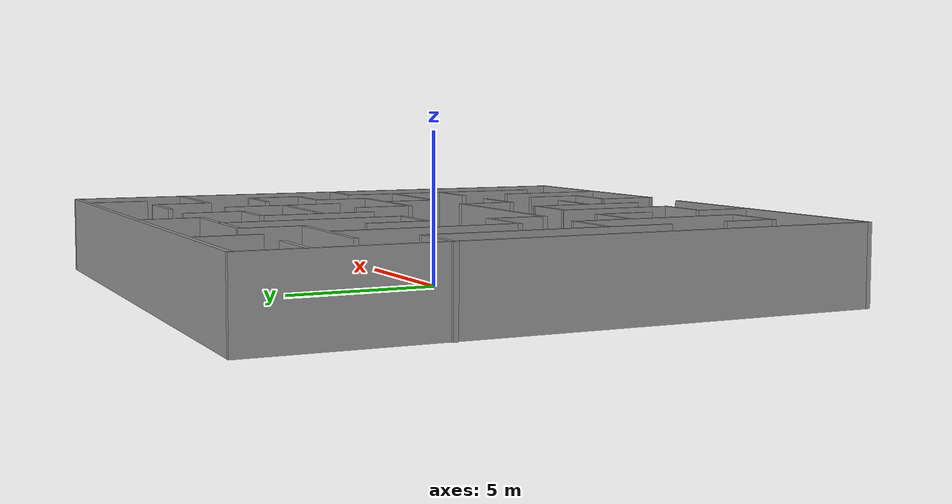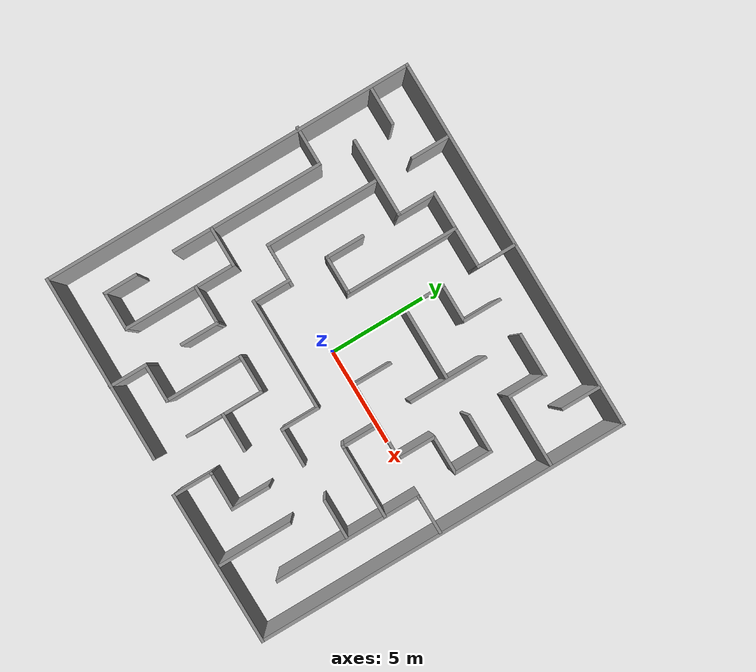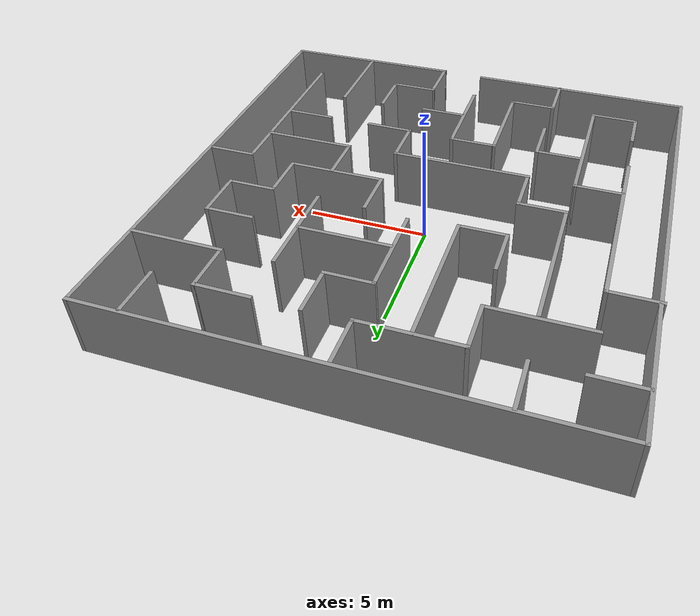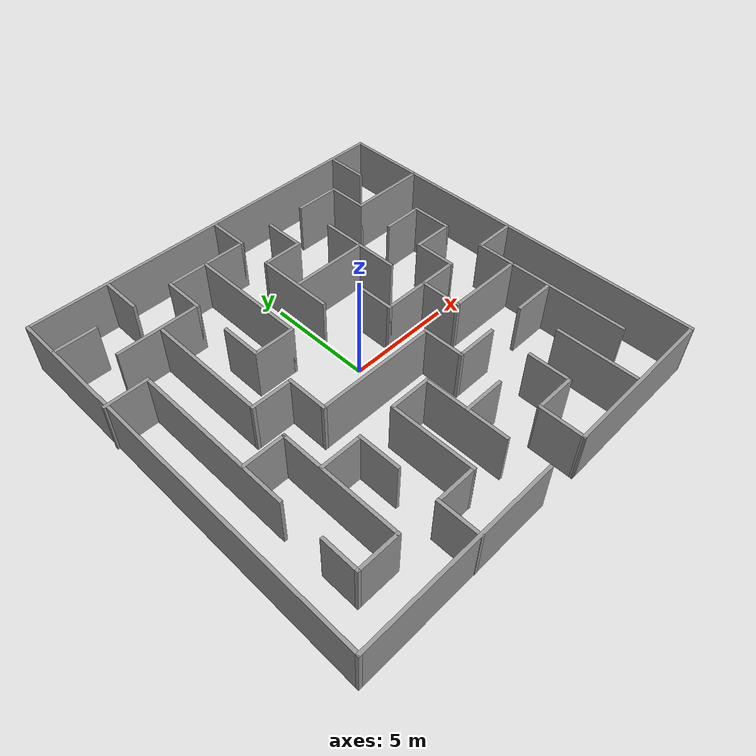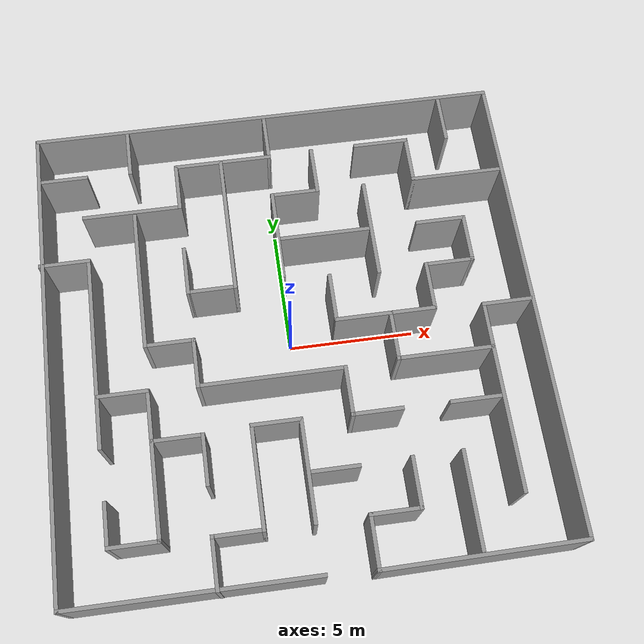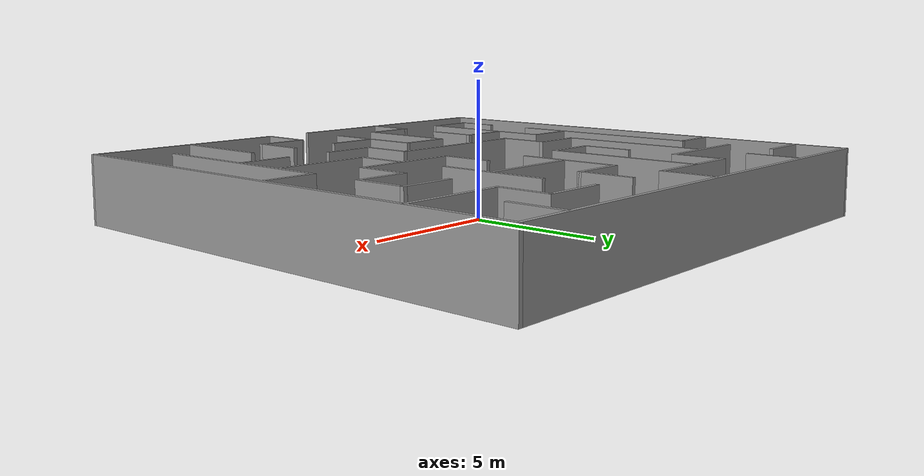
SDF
<?xml version='1.0'?>
<sdf version='1.7'>
  <model name='maze_4'>
    <pose>0.028402 0.032773 0 0 -0 0</pose>
    <link name='Wall_100'>
      <collision name='Wall_100_Collision'>
        <geometry>
          <box>
            <size>2 0.15 2.5</size>
          </box>
        </geometry>
        <pose>0 0 1.25 0 -0 0</pose>
      </collision>
      <visual name='Wall_100_Visual'>
        <pose>0 0 1.25 0 -0 0</pose>
        <geometry>
          <box>
            <size>2 0.15 2.5</size>
          </box>
        </geometry>
        <material>
          <script>
            <uri>file://media/materials/scripts/gazebo.material</uri>
            <name>Gazebo/Grey</name>
          </script>
          <ambient>1 1 1 1</ambient>
        </material>
        <meta>
          <layer>0</layer>
        </meta>
      </visual>
      <pose>5.79272 6.66078 0 0 -0 -1.5708</pose>
    </link>
    <link name='Wall_101'>
      <collision name='Wall_101_Collision'>
        <geometry>
          <box>
            <size>3.75 0.15 2.5</size>
          </box>
        </geometry>
        <pose>0 0 1.25 0 -0 0</pose>
      </collision>
      <visual name='Wall_101_Visual'>
        <pose>0 0 1.25 0 -0 0</pose>
        <geometry>
          <box>
            <size>3.75 0.15 2.5</size>
          </box>
        </geometry>
        <material>
          <script>
            <uri>file://media/materials/scripts/gazebo.material</uri>
            <name>Gazebo/Grey</name>
          </script>
          <ambient>1 1 1 1</ambient>
        </material>
        <meta>
          <layer>0</layer>
        </meta>
      </visual>
      <pose>7.59272 5.73578 0 0 -0 0</pose>
    </link>
    <link name='Wall_103'>
      <collision name='Wall_103_Collision'>
        <geometry>
          <box>
            <size>2 0.15 2.5</size>
          </box>
        </geometry>
        <pose>0 0 1.25 0 -0 0</pose>
      </collision>
      <visual name='Wall_103_Visual'>
        <pose>0 0 1.25 0 -0 0</pose>
        <geometry>
          <box>
            <size>2 0.15 2.5</size>
          </box>
        </geometry>
        <material>
          <script>
            <uri>file://media/materials/scripts/gazebo.material</uri>
            <name>Gazebo/Grey</name>
          </script>
          <ambient>1 1 1 1</ambient>
        </material>
        <meta>
          <layer>0</layer>
        </meta>
      </visual>
      <pose>7.4939 8.44082 0 0 -0 1.5708</pose>
    </link>
    <link name='Wall_105'>
      <collision name='Wall_105_Collision'>
        <geometry>
          <box>
            <size>2 0.15 2.5</size>
          </box>
        </geometry>
        <pose>0 0 1.25 0 -0 0</pose>
      </collision>
      <visual name='Wall_105_Visual'>
        <pose>0 0 1.25 0 -0 0</pose>
        <geometry>
          <box>
            <size>2 0.15 2.5</size>
          </box>
        </geometry>
        <material>
          <script>
            <uri>file://media/materials/scripts/gazebo.material</uri>
            <name>Gazebo/Grey</name>
          </script>
          <ambient>1 1 1 1</ambient>
        </material>
        <meta>
          <layer>0</layer>
        </meta>
      </visual>
      <pose>6.48172 -3.78372 0 0 -0 0</pose>
    </link>
    <link name='Wall_107'>
      <collision name='Wall_107_Collision'>
        <geometry>
          <box>
            <size>2 0.15 2.5</size>
          </box>
        </geometry>
        <pose>0 0 1.25 0 -0 0</pose>
      </collision>
      <visual name='Wall_107_Visual'>
        <pose>0 0 1.25 0 -0 0</pose>
        <geometry>
          <box>
            <size>2 0.15 2.5</size>
          </box>
        </geometry>
        <material>
          <script>
            <uri>file://media/materials/scripts/gazebo.material</uri>
            <name>Gazebo/Grey</name>
          </script>
          <ambient>1 1 1 1</ambient>
        </material>
        <meta>
          <layer>0</layer>
        </meta>
      </visual>
      <pose>1.77061 0.958037 0 0 -0 1.5708</pose>
    </link>
    <link name='Wall_15'>
      <collision name='Wall_15_Collision'>
        <geometry>
          <box>
            <size>2 0.15 2.5</size>
          </box>
        </geometry>
        <pose>0 0 1.25 0 -0 0</pose>
      </collision>
      <visual name='Wall_15_Visual'>
        <pose>0 0 1.25 0 -0 0</pose>
        <geometry>
          <box>
            <size>2 0.15 2.5</size>
          </box>
        </geometry>
        <material>
          <script>
            <uri>file://media/materials/scripts/gazebo.material</uri>
            <name>Gazebo/Grey</name>
          </script>
          <ambient>1 1 1 1</ambient>
        </material>
        <meta>
          <layer>0</layer>
        </meta>
      </visual>
      <pose>3.72947 -6.58961 0 0 -0 -1.5708</pose>
    </link>
    <link name='Wall_16'>
      <collision name='Wall_16_Collision'>
        <geometry>
          <box>
            <size>2 0.15 2.5</size>
          </box>
        </geometry>
        <pose>0 0 1.25 0 -0 0</pose>
      </collision>
      <visual name='Wall_16_Visual'>
        <pose>0 0 1.25 0 -0 0</pose>
        <geometry>
          <box>
            <size>2 0.15 2.5</size>
          </box>
        </geometry>
        <material>
          <script>
            <uri>file://media/materials/scripts/gazebo.material</uri>
            <name>Gazebo/Grey</name>
          </script>
          <ambient>1 1 1 1</ambient>
        </material>
        <meta>
          <layer>0</layer>
        </meta>
      </visual>
      <pose>2.80448 -7.51461 0 0 -0 3.14159</pose>
    </link>
    <link name='Wall_17'>
      <collision name='Wall_17_Collision'>
        <geometry>
          <box>
            <size>2.10003 0.15 2.5</size>
          </box>
        </geometry>
        <pose>0 0 1.25 0 -0 0</pose>
      </collision>
      <visual name='Wall_17_Visual'>
        <pose>0 0 1.25 0 -0 0</pose>
        <geometry>
          <box>
            <size>2.10003 0.15 2.5</size>
          </box>
        </geometry>
        <material>
          <script>
            <uri>file://media/materials/scripts/gazebo.material</uri>
            <name>Gazebo/Grey</name>
          </script>
          <ambient>1 1 1 1</ambient>
        </material>
        <meta>
          <layer>0</layer>
        </meta>
      </visual>
      <pose>1.87447 -8.48961 0 0 -0 -1.57593</pose>
    </link>
    <link name='Wall_19'>
      <collision name='Wall_19_Collision'>
        <geometry>
          <box>
            <size>3.75 0.15 2.5</size>
          </box>
        </geometry>
        <pose>0 0 1.25 0 -0 0</pose>
      </collision>
      <visual name='Wall_19_Visual'>
        <pose>0 0 1.25 0 -0 0</pose>
        <geometry>
          <box>
            <size>3.75 0.15 2.5</size>
          </box>
        </geometry>
        <material>
          <script>
            <uri>file://media/materials/scripts/gazebo.material</uri>
            <name>Gazebo/Grey</name>
          </script>
          <ambient>1 1 1 1</ambient>
        </material>
        <meta>
          <layer>0</layer>
        </meta>
      </visual>
      <pose>5.60947 -7.46461 0 0 -0 -1.5708</pose>
    </link>
    <link name='Wall_2'>
      <collision name='Wall_2_Collision'>
        <geometry>
          <box>
            <size>9.5 0.15 2.5</size>
          </box>
        </geometry>
        <pose>0 0 1.25 0 -0 0</pose>
      </collision>
      <visual name='Wall_2_Visual'>
        <pose>0 0 1.25 0 -0 0</pose>
        <geometry>
          <box>
            <size>9.5 0.15 2.5</size>
          </box>
        </geometry>
        <material>
          <script>
            <uri>file://media/materials/scripts/gazebo.material</uri>
            <name>Gazebo/Grey</name>
          </script>
          <ambient>1 1 1 1</ambient>
        </material>
        <meta>
          <layer>0</layer>
        </meta>
      </visual>
      <pose>-4.70552 -9.38461 0 0 -0 3.14159</pose>
    </link>
    <link name='Wall_23'>
      <collision name='Wall_23_Collision'>
        <geometry>
          <box>
            <size>7.5 0.15 2.5</size>
          </box>
        </geometry>
        <pose>0 0 1.25 0 -0 0</pose>
      </collision>
      <visual name='Wall_23_Visual'>
        <pose>0 0 1.25 0 -0 0</pose>
        <geometry>
          <box>
            <size>7.5 0.15 2.5</size>
          </box>
        </geometry>
        <material>
          <script>
            <uri>file://media/materials/scripts/gazebo.material</uri>
            <name>Gazebo/Grey</name>
          </script>
          <ambient>1 1 1 1</ambient>
        </material>
        <meta>
          <layer>0</layer>
        </meta>
      </visual>
      <pose>7.52947 -3.74961 0 0 -0 1.5708</pose>
    </link>
    <link name='Wall_24'>
      <collision name='Wall_24_Collision'>
        <geometry>
          <box>
            <size>2 0.15 2.5</size>
          </box>
        </geometry>
        <pose>0 0 1.25 0 -0 0</pose>
      </collision>
      <visual name='Wall_24_Visual'>
        <pose>0 0 1.25 0 -0 0</pose>
        <geometry>
          <box>
            <size>2 0.15 2.5</size>
          </box>
        </geometry>
        <material>
          <script>
            <uri>file://media/materials/scripts/gazebo.material</uri>
            <name>Gazebo/Grey</name>
          </script>
          <ambient>1 1 1 1</ambient>
        </material>
        <meta>
          <layer>0</layer>
        </meta>
      </visual>
      <pose>8.45448 -0.074606 0 0 -0 0</pose>
    </link>
    <link name='Wall_3'>
      <collision name='Wall_3_Collision'>
        <geometry>
          <box>
            <size>19 0.15 2.5</size>
          </box>
        </geometry>
        <pose>0 0 1.25 0 -0 0</pose>
      </collision>
      <visual name='Wall_3_Visual'>
        <pose>0 0 1.25 0 -0 0</pose>
        <geometry>
          <box>
            <size>19 0.15 2.5</size>
          </box>
        </geometry>
        <material>
          <script>
            <uri>file://media/materials/scripts/gazebo.material</uri>
            <name>Gazebo/Grey</name>
          </script>
          <ambient>1 1 1 1</ambient>
        </material>
        <meta>
          <layer>0</layer>
        </meta>
      </visual>
      <pose>-9.38052 0.040394 0 0 -0 1.5708</pose>
    </link>
    <link name='Wall_33'>
      <collision name='Wall_33_Collision'>
        <geometry>
          <box>
            <size>2.0526 0.15 2.5</size>
          </box>
        </geometry>
        <pose>0 0 1.25 0 -0 0</pose>
      </collision>
      <visual name='Wall_33_Visual'>
        <pose>0 0 1.25 0 -0 0</pose>
        <geometry>
          <box>
            <size>2.0526 0.15 2.5</size>
          </box>
        </geometry>
        <material>
          <script>
            <uri>file://media/materials/scripts/gazebo.material</uri>
            <name>Gazebo/Grey</name>
          </script>
          <ambient>1 1 1 1</ambient>
        </material>
        <meta>
          <layer>0</layer>
        </meta>
      </visual>
      <pose>-8.51922 3.77539 0 0 -0 0</pose>
    </link>
    <link name='Wall_37'>
      <collision name='Wall_37_Collision'>
        <geometry>
          <box>
            <size>7.75 0.15 2.5</size>
          </box>
        </geometry>
        <pose>0 0 1.25 0 -0 0</pose>
      </collision>
      <visual name='Wall_37_Visual'>
        <pose>0 0 1.25 0 -0 0</pose>
        <geometry>
          <box>
            <size>7.75 0.15 2.5</size>
          </box>
        </geometry>
        <material>
          <script>
            <uri>file://media/materials/scripts/gazebo.material</uri>
            <name>Gazebo/Grey</name>
          </script>
          <ambient>1 1 1 1</ambient>
        </material>
        <meta>
          <layer>0</layer>
        </meta>
      </visual>
      <pose>-7.56792 -0.024606 0 0 -0 -1.5708</pose>
    </link>
    <link name='Wall_39'>
      <collision name='Wall_39_Collision'>
        <geometry>
          <box>
            <size>2 0.15 2.5</size>
          </box>
        </geometry>
        <pose>0 0 1.25 0 -0 0</pose>
      </collision>
      <visual name='Wall_39_Visual'>
        <pose>0 0 1.25 0 -0 0</pose>
        <geometry>
          <box>
            <size>2 0.15 2.5</size>
          </box>
        </geometry>
        <material>
          <script>
            <uri>file://media/materials/scripts/gazebo.material</uri>
            <name>Gazebo/Grey</name>
          </script>
          <ambient>1 1 1 1</ambient>
        </material>
        <meta>
          <layer>0</layer>
        </meta>
      </visual>
      <pose>-6.59514 -1.87286 0 0 -0 0</pose>
    </link>
    <link name='Wall_4'>
      <collision name='Wall_4_Collision'>
        <geometry>
          <box>
            <size>19 0.15 2.5</size>
          </box>
        </geometry>
        <pose>0 0 1.25 0 -0 0</pose>
      </collision>
      <visual name='Wall_4_Visual'>
        <pose>0 0 1.25 0 -0 0</pose>
        <geometry>
          <box>
            <size>19 0.15 2.5</size>
          </box>
        </geometry>
        <material>
          <script>
            <uri>file://media/materials/scripts/gazebo.material</uri>
            <name>Gazebo/Grey</name>
          </script>
          <ambient>1 1 1 1</ambient>
        </material>
        <meta>
          <layer>0</layer>
        </meta>
      </visual>
      <pose>0.044475 9.46539 0 0 -0 0</pose>
    </link>
    <link name='Wall_40'>
      <collision name='Wall_40_Collision'>
        <geometry>
          <box>
            <size>5.75 0.15 2.5</size>
          </box>
        </geometry>
        <pose>0 0 1.25 0 -0 0</pose>
      </collision>
      <visual name='Wall_40_Visual'>
        <pose>0 0 1.25 0 -0 0</pose>
        <geometry>
          <box>
            <size>5.75 0.15 2.5</size>
          </box>
        </geometry>
        <material>
          <script>
            <uri>file://media/materials/scripts/gazebo.material</uri>
            <name>Gazebo/Grey</name>
          </script>
          <ambient>1 1 1 1</ambient>
        </material>
        <meta>
          <layer>0</layer>
        </meta>
      </visual>
      <pose>-5.67014 -4.67286 0 0 -0 -1.5708</pose>
    </link>
    <link name='Wall_41'>
      <collision name='Wall_41_Collision'>
        <geometry>
          <box>
            <size>2 0.15 2.5</size>
          </box>
        </geometry>
        <pose>0 0 1.25 0 -0 0</pose>
      </collision>
      <visual name='Wall_41_Visual'>
        <pose>0 0 1.25 0 -0 0</pose>
        <geometry>
          <box>
            <size>2 0.15 2.5</size>
          </box>
        </geometry>
        <material>
          <script>
            <uri>file://media/materials/scripts/gazebo.material</uri>
            <name>Gazebo/Grey</name>
          </script>
          <ambient>1 1 1 1</ambient>
        </material>
        <meta>
          <layer>0</layer>
        </meta>
      </visual>
      <pose>-6.59514 -7.47286 0 0 -0 3.14159</pose>
    </link>
    <link name='Wall_42'>
      <collision name='Wall_42_Collision'>
        <geometry>
          <box>
            <size>1.75 0.15 2.5</size>
          </box>
        </geometry>
        <pose>0 0 1.25 0 -0 0</pose>
      </collision>
      <visual name='Wall_42_Visual'>
        <pose>0 0 1.25 0 -0 0</pose>
        <geometry>
          <box>
            <size>1.75 0.15 2.5</size>
          </box>
        </geometry>
        <material>
          <script>
            <uri>file://media/materials/scripts/gazebo.material</uri>
            <name>Gazebo/Grey</name>
          </script>
          <ambient>1 1 1 1</ambient>
        </material>
        <meta>
          <layer>0</layer>
        </meta>
      </visual>
      <pose>-7.52014 -6.67286 0 0 -0 1.5708</pose>
    </link>
    <link name='Wall_44'>
      <collision name='Wall_44_Collision'>
        <geometry>
          <box>
            <size>2 0.15 2.5</size>
          </box>
        </geometry>
        <pose>0 0 1.25 0 -0 0</pose>
      </collision>
      <visual name='Wall_44_Visual'>
        <pose>0 0 1.25 0 -0 0</pose>
        <geometry>
          <box>
            <size>2 0.15 2.5</size>
          </box>
        </geometry>
        <material>
          <script>
            <uri>file://media/materials/scripts/gazebo.material</uri>
            <name>Gazebo/Grey</name>
          </script>
          <ambient>1 1 1 1</ambient>
        </material>
        <meta>
          <layer>0</layer>
        </meta>
      </visual>
      <pose>-3.77881 -4.75053 0 0 -0 1.5708</pose>
    </link>
    <link name='Wall_45'>
      <collision name='Wall_45_Collision'>
        <geometry>
          <box>
            <size>2 0.15 2.5</size>
          </box>
        </geometry>
        <pose>0 0 1.25 0 -0 0</pose>
      </collision>
      <visual name='Wall_45_Visual'>
        <pose>0 0 1.25 0 -0 0</pose>
        <geometry>
          <box>
            <size>2 0.15 2.5</size>
          </box>
        </geometry>
        <material>
          <script>
            <uri>file://media/materials/scripts/gazebo.material</uri>
            <name>Gazebo/Grey</name>
          </script>
          <ambient>1 1 1 1</ambient>
        </material>
        <meta>
          <layer>0</layer>
        </meta>
      </visual>
      <pose>-4.70381 -3.82553 0 0 -0 3.14159</pose>
    </link>
    <link name='Wall_5'>
      <collision name='Wall_5_Collision'>
        <geometry>
          <box>
            <size>19 0.15 2.5</size>
          </box>
        </geometry>
        <pose>0 0 1.25 0 -0 0</pose>
      </collision>
      <visual name='Wall_5_Visual'>
        <pose>0 0 1.25 0 -0 0</pose>
        <geometry>
          <box>
            <size>19 0.15 2.5</size>
          </box>
        </geometry>
        <material>
          <script>
            <uri>file://media/materials/scripts/gazebo.material</uri>
            <name>Gazebo/Grey</name>
          </script>
          <ambient>1 1 1 1</ambient>
        </material>
        <meta>
          <layer>0</layer>
        </meta>
      </visual>
      <pose>9.46947 0.040394 0 0 -0 -1.5708</pose>
    </link>
    <link name='Wall_51'>
      <collision name='Wall_51_Collision'>
        <geometry>
          <box>
            <size>2 0.15 2.5</size>
          </box>
        </geometry>
        <pose>0 0 1.25 0 -0 0</pose>
      </collision>
      <visual name='Wall_51_Visual'>
        <pose>0 0 1.25 0 -0 0</pose>
        <geometry>
          <box>
            <size>2 0.15 2.5</size>
          </box>
        </geometry>
        <material>
          <script>
            <uri>file://media/materials/scripts/gazebo.material</uri>
            <name>Gazebo/Grey</name>
          </script>
          <ambient>1 1 1 1</ambient>
        </material>
        <meta>
          <layer>0</layer>
        </meta>
      </visual>
      <pose>-3.81158 -8.47921 0 0 -0 1.5708</pose>
    </link>
    <link name='Wall_52'>
      <collision name='Wall_52_Collision'>
        <geometry>
          <box>
            <size>2 0.15 2.5</size>
          </box>
        </geometry>
        <pose>0 0 1.25 0 -0 0</pose>
      </collision>
      <visual name='Wall_52_Visual'>
        <pose>0 0 1.25 0 -0 0</pose>
        <geometry>
          <box>
            <size>2 0.15 2.5</size>
          </box>
        </geometry>
        <material>
          <script>
            <uri>file://media/materials/scripts/gazebo.material</uri>
            <name>Gazebo/Grey</name>
          </script>
          <ambient>1 1 1 1</ambient>
        </material>
        <meta>
          <layer>0</layer>
        </meta>
      </visual>
      <pose>-2.88658 -7.55422 0 0 -0 0</pose>
    </link>
    <link name='Wall_53'>
      <collision name='Wall_53_Collision'>
        <geometry>
          <box>
            <size>4 0.15 2.5</size>
          </box>
        </geometry>
        <pose>0 0 1.25 0 -0 0</pose>
      </collision>
      <visual name='Wall_53_Visual'>
        <pose>0 0 1.25 0 -0 0</pose>
        <geometry>
          <box>
            <size>4 0.15 2.5</size>
          </box>
        </geometry>
        <material>
          <script>
            <uri>file://media/materials/scripts/gazebo.material</uri>
            <name>Gazebo/Grey</name>
          </script>
          <ambient>1 1 1 1</ambient>
        </material>
        <meta>
          <layer>0</layer>
        </meta>
      </visual>
      <pose>-1.96158 -5.62922 0 0 -0 1.5708</pose>
    </link>
    <link name='Wall_54'>
      <collision name='Wall_54_Collision'>
        <geometry>
          <box>
            <size>2 0.15 2.5</size>
          </box>
        </geometry>
        <pose>0 0 1.25 0 -0 0</pose>
      </collision>
      <visual name='Wall_54_Visual'>
        <pose>0 0 1.25 0 -0 0</pose>
        <geometry>
          <box>
            <size>2 0.15 2.5</size>
          </box>
        </geometry>
        <material>
          <script>
            <uri>file://media/materials/scripts/gazebo.material</uri>
            <name>Gazebo/Grey</name>
          </script>
          <ambient>1 1 1 1</ambient>
        </material>
        <meta>
          <layer>0</layer>
        </meta>
      </visual>
      <pose>-1.03658 -3.70422 0 0 -0 0</pose>
    </link>
    <link name='Wall_55'>
      <collision name='Wall_55_Collision'>
        <geometry>
          <box>
            <size>4 0.15 2.5</size>
          </box>
        </geometry>
        <pose>0 0 1.25 0 -0 0</pose>
      </collision>
      <visual name='Wall_55_Visual'>
        <pose>0 0 1.25 0 -0 0</pose>
        <geometry>
          <box>
            <size>4 0.15 2.5</size>
          </box>
        </geometry>
        <material>
          <script>
            <uri>file://media/materials/scripts/gazebo.material</uri>
            <name>Gazebo/Grey</name>
          </script>
          <ambient>1 1 1 1</ambient>
        </material>
        <meta>
          <layer>0</layer>
        </meta>
      </visual>
      <pose>-0.111583 -5.62922 0 0 -0 -1.5708</pose>
    </link>
    <link name='Wall_57'>
      <collision name='Wall_57_Collision'>
        <geometry>
          <box>
            <size>2 0.15 2.5</size>
          </box>
        </geometry>
        <pose>0 0 1.25 0 -0 0</pose>
      </collision>
      <visual name='Wall_57_Visual'>
        <pose>0 0 1.25 0 -0 0</pose>
        <geometry>
          <box>
            <size>2 0.15 2.5</size>
          </box>
        </geometry>
        <material>
          <script>
            <uri>file://media/materials/scripts/gazebo.material</uri>
            <name>Gazebo/Grey</name>
          </script>
          <ambient>1 1 1 1</ambient>
        </material>
        <meta>
          <layer>0</layer>
        </meta>
      </visual>
      <pose>0.823178 -5.71356 0 0 -0 0</pose>
    </link>
    <link name='Wall_59'>
      <collision name='Wall_59_Collision'>
        <geometry>
          <box>
            <size>2 0.15 2.5</size>
          </box>
        </geometry>
        <pose>0 0 1.25 0 -0 0</pose>
      </collision>
      <visual name='Wall_59_Visual'>
        <pose>0 0 1.25 0 -0 0</pose>
        <geometry>
          <box>
            <size>2 0.15 2.5</size>
          </box>
        </geometry>
        <material>
          <script>
            <uri>file://media/materials/scripts/gazebo.material</uri>
            <name>Gazebo/Grey</name>
          </script>
          <ambient>1 1 1 1</ambient>
        </material>
        <meta>
          <layer>0</layer>
        </meta>
      </visual>
      <pose>2.74895 -3.7803 0 0 -0 3.14159</pose>
    </link>
    <link name='Wall_6'>
      <collision name='Wall_6_Collision'>
        <geometry>
          <box>
            <size>7.75095 0.15 2.5</size>
          </box>
        </geometry>
        <pose>0 0 1.25 0 -0 0</pose>
      </collision>
      <visual name='Wall_6_Visual'>
        <pose>0 0 1.25 0 -0 0</pose>
        <geometry>
          <box>
            <size>7.75095 0.15 2.5</size>
          </box>
        </geometry>
        <material>
          <script>
            <uri>file://media/materials/scripts/gazebo.material</uri>
            <name>Gazebo/Grey</name>
          </script>
          <ambient>1 1 1 1</ambient>
        </material>
        <meta>
          <layer>0</layer>
        </meta>
      </visual>
      <pose>5.66948 -9.42461 0 0 -0 -3.13107</pose>
    </link>
    <link name='Wall_60'>
      <collision name='Wall_60_Collision'>
        <geometry>
          <box>
            <size>2 0.15 2.5</size>
          </box>
        </geometry>
        <pose>0 0 1.25 0 -0 0</pose>
      </collision>
      <visual name='Wall_60_Visual'>
        <pose>0 0 1.25 0 -0 0</pose>
        <geometry>
          <box>
            <size>2 0.15 2.5</size>
          </box>
        </geometry>
        <material>
          <script>
            <uri>file://media/materials/scripts/gazebo.material</uri>
            <name>Gazebo/Grey</name>
          </script>
          <ambient>1 1 1 1</ambient>
        </material>
        <meta>
          <layer>0</layer>
        </meta>
      </visual>
      <pose>1.82395 -2.8553 0 0 -0 1.5708</pose>
    </link>
    <link name='Wall_61'>
      <collision name='Wall_61_Collision'>
        <geometry>
          <box>
            <size>5.75 0.15 2.5</size>
          </box>
        </geometry>
        <pose>0 0 1.25 0 -0 0</pose>
      </collision>
      <visual name='Wall_61_Visual'>
        <pose>0 0 1.25 0 -0 0</pose>
        <geometry>
          <box>
            <size>5.75 0.15 2.5</size>
          </box>
        </geometry>
        <material>
          <script>
            <uri>file://media/materials/scripts/gazebo.material</uri>
            <name>Gazebo/Grey</name>
          </script>
          <ambient>1 1 1 1</ambient>
        </material>
        <meta>
          <layer>0</layer>
        </meta>
      </visual>
      <pose>-0.976054 -1.9303 0 0 -0 3.14159</pose>
    </link>
    <link name='Wall_62'>
      <collision name='Wall_62_Collision'>
        <geometry>
          <box>
            <size>2 0.15 2.5</size>
          </box>
        </geometry>
        <pose>0 0 1.25 0 -0 0</pose>
      </collision>
      <visual name='Wall_62_Visual'>
        <pose>0 0 1.25 0 -0 0</pose>
        <geometry>
          <box>
            <size>2 0.15 2.5</size>
          </box>
        </geometry>
        <material>
          <script>
            <uri>file://media/materials/scripts/gazebo.material</uri>
            <name>Gazebo/Grey</name>
          </script>
          <ambient>1 1 1 1</ambient>
        </material>
        <meta>
          <layer>0</layer>
        </meta>
      </visual>
      <pose>-3.77605 -1.0053 0 0 -0 1.5708</pose>
    </link>
    <link name='Wall_63'>
      <collision name='Wall_63_Collision'>
        <geometry>
          <box>
            <size>2 0.15 2.5</size>
          </box>
        </geometry>
        <pose>0 0 1.25 0 -0 0</pose>
      </collision>
      <visual name='Wall_63_Visual'>
        <pose>0 0 1.25 0 -0 0</pose>
        <geometry>
          <box>
            <size>2 0.15 2.5</size>
          </box>
        </geometry>
        <material>
          <script>
            <uri>file://media/materials/scripts/gazebo.material</uri>
            <name>Gazebo/Grey</name>
          </script>
          <ambient>1 1 1 1</ambient>
        </material>
        <meta>
          <layer>0</layer>
        </meta>
      </visual>
      <pose>-4.70105 -0.080296 0 0 -0 3.14159</pose>
    </link>
    <link name='Wall_64'>
      <collision name='Wall_64_Collision'>
        <geometry>
          <box>
            <size>5.75 0.15 2.5</size>
          </box>
        </geometry>
        <pose>0 0 1.25 0 -0 0</pose>
      </collision>
      <visual name='Wall_64_Visual'>
        <pose>0 0 1.25 0 -0 0</pose>
        <geometry>
          <box>
            <size>5.75 0.15 2.5</size>
          </box>
        </geometry>
        <material>
          <script>
            <uri>file://media/materials/scripts/gazebo.material</uri>
            <name>Gazebo/Grey</name>
          </script>
          <ambient>1 1 1 1</ambient>
        </material>
        <meta>
          <layer>0</layer>
        </meta>
      </visual>
      <pose>-5.62605 2.7197 0 0 -0 1.5708</pose>
    </link>
    <link name='Wall_66'>
      <collision name='Wall_66_Collision'>
        <geometry>
          <box>
            <size>3.75 0.15 2.5</size>
          </box>
        </geometry>
        <pose>0 0 1.25 0 -0 0</pose>
      </collision>
      <visual name='Wall_66_Visual'>
        <pose>0 0 1.25 0 -0 0</pose>
        <geometry>
          <box>
            <size>3.75 0.15 2.5</size>
          </box>
        </geometry>
        <material>
          <script>
            <uri>file://media/materials/scripts/gazebo.material</uri>
            <name>Gazebo/Grey</name>
          </script>
          <ambient>1 1 1 1</ambient>
        </material>
        <meta>
          <layer>0</layer>
        </meta>
      </visual>
      <pose>5.68728 -1.83363 0 0 -0 3.14159</pose>
    </link>
    <link name='Wall_67'>
      <collision name='Wall_67_Collision'>
        <geometry>
          <box>
            <size>2 0.15 2.5</size>
          </box>
        </geometry>
        <pose>0 0 1.25 0 -0 0</pose>
      </collision>
      <visual name='Wall_67_Visual'>
        <pose>0 0 1.25 0 -0 0</pose>
        <geometry>
          <box>
            <size>2 0.15 2.5</size>
          </box>
        </geometry>
        <material>
          <script>
            <uri>file://media/materials/scripts/gazebo.material</uri>
            <name>Gazebo/Grey</name>
          </script>
          <ambient>1 1 1 1</ambient>
        </material>
        <meta>
          <layer>0</layer>
        </meta>
      </visual>
      <pose>3.88728 -0.90863 0 0 -0 1.5708</pose>
    </link>
    <link name='Wall_69'>
      <collision name='Wall_69_Collision'>
        <geometry>
          <box>
            <size>4 0.15 2.5</size>
          </box>
        </geometry>
        <pose>0 0 1.25 0 -0 0</pose>
      </collision>
      <visual name='Wall_69_Visual'>
        <pose>0 0 1.25 0 -0 0</pose>
        <geometry>
          <box>
            <size>4 0.15 2.5</size>
          </box>
        </geometry>
        <material>
          <script>
            <uri>file://media/materials/scripts/gazebo.material</uri>
            <name>Gazebo/Grey</name>
          </script>
          <ambient>1 1 1 1</ambient>
        </material>
        <meta>
          <layer>0</layer>
        </meta>
      </visual>
      <pose>3.69561 0.033037 0 0 -0 0</pose>
    </link>
    <link name='Wall_70'>
      <collision name='Wall_70_Collision'>
        <geometry>
          <box>
            <size>2 0.15 2.5</size>
          </box>
        </geometry>
        <pose>0 0 1.25 0 -0 0</pose>
      </collision>
      <visual name='Wall_70_Visual'>
        <pose>0 0 1.25 0 -0 0</pose>
        <geometry>
          <box>
            <size>2 0.15 2.5</size>
          </box>
        </geometry>
        <material>
          <script>
            <uri>file://media/materials/scripts/gazebo.material</uri>
            <name>Gazebo/Grey</name>
          </script>
          <ambient>1 1 1 1</ambient>
        </material>
        <meta>
          <layer>0</layer>
        </meta>
      </visual>
      <pose>5.62061 0.958037 0 0 -0 1.5708</pose>
    </link>
    <link name='Wall_71'>
      <collision name='Wall_71_Collision'>
        <geometry>
          <box>
            <size>2 0.15 2.5</size>
          </box>
        </geometry>
        <pose>0 0 1.25 0 -0 0</pose>
      </collision>
      <visual name='Wall_71_Visual'>
        <pose>0 0 1.25 0 -0 0</pose>
        <geometry>
          <box>
            <size>2 0.15 2.5</size>
          </box>
        </geometry>
        <material>
          <script>
            <uri>file://media/materials/scripts/gazebo.material</uri>
            <name>Gazebo/Grey</name>
          </script>
          <ambient>1 1 1 1</ambient>
        </material>
        <meta>
          <layer>0</layer>
        </meta>
      </visual>
      <pose>6.54561 1.88304 0 0 -0 0</pose>
    </link>
    <link name='Wall_72'>
      <collision name='Wall_72_Collision'>
        <geometry>
          <box>
            <size>2 0.15 2.5</size>
          </box>
        </geometry>
        <pose>0 0 1.25 0 -0 0</pose>
      </collision>
      <visual name='Wall_72_Visual'>
        <pose>0 0 1.25 0 -0 0</pose>
        <geometry>
          <box>
            <size>2 0.15 2.5</size>
          </box>
        </geometry>
        <material>
          <script>
            <uri>file://media/materials/scripts/gazebo.material</uri>
            <name>Gazebo/Grey</name>
          </script>
          <ambient>1 1 1 1</ambient>
        </material>
        <meta>
          <layer>0</layer>
        </meta>
      </visual>
      <pose>7.47061 2.80804 0 0 -0 1.5708</pose>
    </link>
    <link name='Wall_73'>
      <collision name='Wall_73_Collision'>
        <geometry>
          <box>
            <size>2 0.15 2.5</size>
          </box>
        </geometry>
        <pose>0 0 1.25 0 -0 0</pose>
      </collision>
      <visual name='Wall_73_Visual'>
        <pose>0 0 1.25 0 -0 0</pose>
        <geometry>
          <box>
            <size>2 0.15 2.5</size>
          </box>
        </geometry>
        <material>
          <script>
            <uri>file://media/materials/scripts/gazebo.material</uri>
            <name>Gazebo/Grey</name>
          </script>
          <ambient>1 1 1 1</ambient>
        </material>
        <meta>
          <layer>0</layer>
        </meta>
      </visual>
      <pose>6.54561 3.73304 0 0 -0 3.14159</pose>
    </link>
    <link name='Wall_77'>
      <collision name='Wall_77_Collision'>
        <geometry>
          <box>
            <size>4 0.15 2.5</size>
          </box>
        </geometry>
        <pose>0 0 1.25 0 -0 0</pose>
      </collision>
      <visual name='Wall_77_Visual'>
        <pose>0 0 1.25 0 -0 0</pose>
        <geometry>
          <box>
            <size>4 0.15 2.5</size>
          </box>
        </geometry>
        <material>
          <script>
            <uri>file://media/materials/scripts/gazebo.material</uri>
            <name>Gazebo/Grey</name>
          </script>
          <ambient>1 1 1 1</ambient>
        </material>
        <meta>
          <layer>0</layer>
        </meta>
      </visual>
      <pose>3.72728 3.76137 0 0 -0 -1.5708</pose>
    </link>
    <link name='Wall_79'>
      <collision name='Wall_79_Collision'>
        <geometry>
          <box>
            <size>2 0.15 2.5</size>
          </box>
        </geometry>
        <pose>0 0 1.25 0 -0 0</pose>
      </collision>
      <visual name='Wall_79_Visual'>
        <pose>0 0 1.25 0 -0 0</pose>
        <geometry>
          <box>
            <size>2 0.15 2.5</size>
          </box>
        </geometry>
        <material>
          <script>
            <uri>file://media/materials/scripts/gazebo.material</uri>
            <name>Gazebo/Grey</name>
          </script>
          <ambient>1 1 1 1</ambient>
        </material>
        <meta>
          <layer>0</layer>
        </meta>
      </visual>
      <pose>1.83395 6.6547 0 0 -0 -1.5708</pose>
    </link>
    <link name='Wall_80'>
      <collision name='Wall_80_Collision'>
        <geometry>
          <box>
            <size>2 0.15 2.5</size>
          </box>
        </geometry>
        <pose>0 0 1.25 0 -0 0</pose>
      </collision>
      <visual name='Wall_80_Visual'>
        <pose>0 0 1.25 0 -0 0</pose>
        <geometry>
          <box>
            <size>2 0.15 2.5</size>
          </box>
        </geometry>
        <material>
          <script>
            <uri>file://media/materials/scripts/gazebo.material</uri>
            <name>Gazebo/Grey</name>
          </script>
          <ambient>1 1 1 1</ambient>
        </material>
        <meta>
          <layer>0</layer>
        </meta>
      </visual>
      <pose>0.908946 5.7297 0 0 -0 3.14159</pose>
    </link>
    <link name='Wall_81'>
      <collision name='Wall_81_Collision'>
        <geometry>
          <box>
            <size>3.75 0.15 2.5</size>
          </box>
        </geometry>
        <pose>0 0 1.25 0 -0 0</pose>
      </collision>
      <visual name='Wall_81_Visual'>
        <pose>0 0 1.25 0 -0 0</pose>
        <geometry>
          <box>
            <size>3.75 0.15 2.5</size>
          </box>
        </geometry>
        <material>
          <script>
            <uri>file://media/materials/scripts/gazebo.material</uri>
            <name>Gazebo/Grey</name>
          </script>
          <ambient>1 1 1 1</ambient>
        </material>
        <meta>
          <layer>0</layer>
        </meta>
      </visual>
      <pose>-0.016054 3.9297 0 0 -0 -1.5708</pose>
    </link>
    <link name='Wall_84'>
      <collision name='Wall_84_Collision'>
        <geometry>
          <box>
            <size>3.75 0.15 2.5</size>
          </box>
        </geometry>
        <pose>0 0 1.25 0 -0 0</pose>
      </collision>
      <visual name='Wall_84_Visual'>
        <pose>0 0 1.25 0 -0 0</pose>
        <geometry>
          <box>
            <size>3.75 0.15 2.5</size>
          </box>
        </geometry>
        <material>
          <script>
            <uri>file://media/materials/scripts/gazebo.material</uri>
            <name>Gazebo/Grey</name>
          </script>
          <ambient>1 1 1 1</ambient>
        </material>
        <meta>
          <layer>0</layer>
        </meta>
      </visual>
      <pose>1.87395 3.7397 0 0 -0 0</pose>
    </link>
    <link name='Wall_86'>
      <collision name='Wall_86_Collision'>
        <geometry>
          <box>
            <size>2 0.15 2.5</size>
          </box>
        </geometry>
        <pose>0 0 1.25 0 -0 0</pose>
      </collision>
      <visual name='Wall_86_Visual'>
        <pose>0 0 1.25 0 -0 0</pose>
        <geometry>
          <box>
            <size>2 0.15 2.5</size>
          </box>
        </geometry>
        <material>
          <script>
            <uri>file://media/materials/scripts/gazebo.material</uri>
            <name>Gazebo/Grey</name>
          </script>
          <ambient>1 1 1 1</ambient>
        </material>
        <meta>
          <layer>0</layer>
        </meta>
      </visual>
      <pose>-3.79272 2.84137 0 0 -0 -1.5708</pose>
    </link>
    <link name='Wall_87'>
      <collision name='Wall_87_Collision'>
        <geometry>
          <box>
            <size>2 0.15 2.5</size>
          </box>
        </geometry>
        <pose>0 0 1.25 0 -0 0</pose>
      </collision>
      <visual name='Wall_87_Visual'>
        <pose>0 0 1.25 0 -0 0</pose>
        <geometry>
          <box>
            <size>2 0.15 2.5</size>
          </box>
        </geometry>
        <material>
          <script>
            <uri>file://media/materials/scripts/gazebo.material</uri>
            <name>Gazebo/Grey</name>
          </script>
          <ambient>1 1 1 1</ambient>
        </material>
        <meta>
          <layer>0</layer>
        </meta>
      </visual>
      <pose>-2.86772 1.91637 0 0 -0 0</pose>
    </link>
    <link name='Wall_88'>
      <collision name='Wall_88_Collision'>
        <geometry>
          <box>
            <size>5.75 0.15 2.5</size>
          </box>
        </geometry>
        <pose>0 0 1.25 0 -0 0</pose>
      </collision>
      <visual name='Wall_88_Visual'>
        <pose>0 0 1.25 0 -0 0</pose>
        <geometry>
          <box>
            <size>5.75 0.15 2.5</size>
          </box>
        </geometry>
        <material>
          <script>
            <uri>file://media/materials/scripts/gazebo.material</uri>
            <name>Gazebo/Grey</name>
          </script>
          <ambient>1 1 1 1</ambient>
        </material>
        <meta>
          <layer>0</layer>
        </meta>
      </visual>
      <pose>-1.94272 4.71637 0 0 -0 1.5708</pose>
    </link>
    <link name='Wall_90'>
      <collision name='Wall_90_Collision'>
        <geometry>
          <box>
            <size>4 0.15 2.5</size>
          </box>
        </geometry>
        <pose>0 0 1.25 0 -0 0</pose>
      </collision>
      <visual name='Wall_90_Visual'>
        <pose>0 0 1.25 0 -0 0</pose>
        <geometry>
          <box>
            <size>4 0.15 2.5</size>
          </box>
        </geometry>
        <material>
          <script>
            <uri>file://media/materials/scripts/gazebo.material</uri>
            <name>Gazebo/Grey</name>
          </script>
          <ambient>1 1 1 1</ambient>
        </material>
        <meta>
          <layer>0</layer>
        </meta>
      </visual>
      <pose>-5.70772 5.68637 0 0 -0 0</pose>
    </link>
    <link name='Wall_91'>
      <collision name='Wall_91_Collision'>
        <geometry>
          <box>
            <size>2 0.15 2.5</size>
          </box>
        </geometry>
        <pose>0 0 1.25 0 -0 0</pose>
      </collision>
      <visual name='Wall_91_Visual'>
        <pose>0 0 1.25 0 -0 0</pose>
        <geometry>
          <box>
            <size>2 0.15 2.5</size>
          </box>
        </geometry>
        <material>
          <script>
            <uri>file://media/materials/scripts/gazebo.material</uri>
            <name>Gazebo/Grey</name>
          </script>
          <ambient>1 1 1 1</ambient>
        </material>
        <meta>
          <layer>0</layer>
        </meta>
      </visual>
      <pose>-3.78272 6.61137 0 0 -0 1.5708</pose>
    </link>
    <link name='Wall_92'>
      <collision name='Wall_92_Collision'>
        <geometry>
          <box>
            <size>4 0.15 2.5</size>
          </box>
        </geometry>
        <pose>0 0 1.25 0 -0 0</pose>
      </collision>
      <visual name='Wall_92_Visual'>
        <pose>0 0 1.25 0 -0 0</pose>
        <geometry>
          <box>
            <size>4 0.15 2.5</size>
          </box>
        </geometry>
        <material>
          <script>
            <uri>file://media/materials/scripts/gazebo.material</uri>
            <name>Gazebo/Grey</name>
          </script>
          <ambient>1 1 1 1</ambient>
        </material>
        <meta>
          <layer>0</layer>
        </meta>
      </visual>
      <pose>-1.85772 7.53637 0 0 -0 0</pose>
    </link>
    <link name='Wall_93'>
      <collision name='Wall_93_Collision'>
        <geometry>
          <box>
            <size>2 0.15 2.5</size>
          </box>
        </geometry>
        <pose>0 0 1.25 0 -0 0</pose>
      </collision>
      <visual name='Wall_93_Visual'>
        <pose>0 0 1.25 0 -0 0</pose>
        <geometry>
          <box>
            <size>2 0.15 2.5</size>
          </box>
        </geometry>
        <material>
          <script>
            <uri>file://media/materials/scripts/gazebo.material</uri>
            <name>Gazebo/Grey</name>
          </script>
          <ambient>1 1 1 1</ambient>
        </material>
        <meta>
          <layer>0</layer>
        </meta>
      </visual>
      <pose>0.06728 8.46137 0 0 -0 1.5708</pose>
    </link>
    <link name='Wall_95'>
      <collision name='Wall_95_Collision'>
        <geometry>
          <box>
            <size>2 0.15 2.5</size>
          </box>
        </geometry>
        <pose>0 0 1.25 0 -0 0</pose>
      </collision>
      <visual name='Wall_95_Visual'>
        <pose>0 0 1.25 0 -0 0</pose>
        <geometry>
          <box>
            <size>2 0.15 2.5</size>
          </box>
        </geometry>
        <material>
          <script>
            <uri>file://media/materials/scripts/gazebo.material</uri>
            <name>Gazebo/Grey</name>
          </script>
          <ambient>1 1 1 1</ambient>
        </material>
        <meta>
          <layer>0</layer>
        </meta>
      </visual>
      <pose>-8.4026 7.53914 0 0 -0 3.14159</pose>
    </link>
    <link name='Wall_97'>
      <collision name='Wall_97_Collision'>
        <geometry>
          <box>
            <size>2 0.15 2.5</size>
          </box>
        </geometry>
        <pose>0 0 1.25 0 -0 0</pose>
      </collision>
      <visual name='Wall_97_Visual'>
        <pose>0 0 1.25 0 -0 0</pose>
        <geometry>
          <box>
            <size>2 0.15 2.5</size>
          </box>
        </geometry>
        <material>
          <script>
            <uri>file://media/materials/scripts/gazebo.material</uri>
            <name>Gazebo/Grey</name>
          </script>
          <ambient>1 1 1 1</ambient>
        </material>
        <meta>
          <layer>0</layer>
        </meta>
      </visual>
      <pose>-5.65863 8.46414 0 0 -0 1.5708</pose>
    </link>
    <link name='Wall_99'>
      <collision name='Wall_99_Collision'>
        <geometry>
          <box>
            <size>2.25 0.15 2.5</size>
          </box>
        </geometry>
        <pose>0 0 1.25 0 -0 0</pose>
      </collision>
      <visual name='Wall_99_Visual'>
        <pose>0 0 1.25 0 -0 0</pose>
        <geometry>
          <box>
            <size>2.25 0.15 2.5</size>
          </box>
        </geometry>
        <material>
          <script>
            <uri>file://media/materials/scripts/gazebo.material</uri>
            <name>Gazebo/Grey</name>
          </script>
          <ambient>1 1 1 1</ambient>
        </material>
        <meta>
          <layer>0</layer>
        </meta>
      </visual>
      <pose>4.74272 7.58578 0 0 -0 0</pose>
    </link>
    <static>1</static>
  </model>
</sdf>
